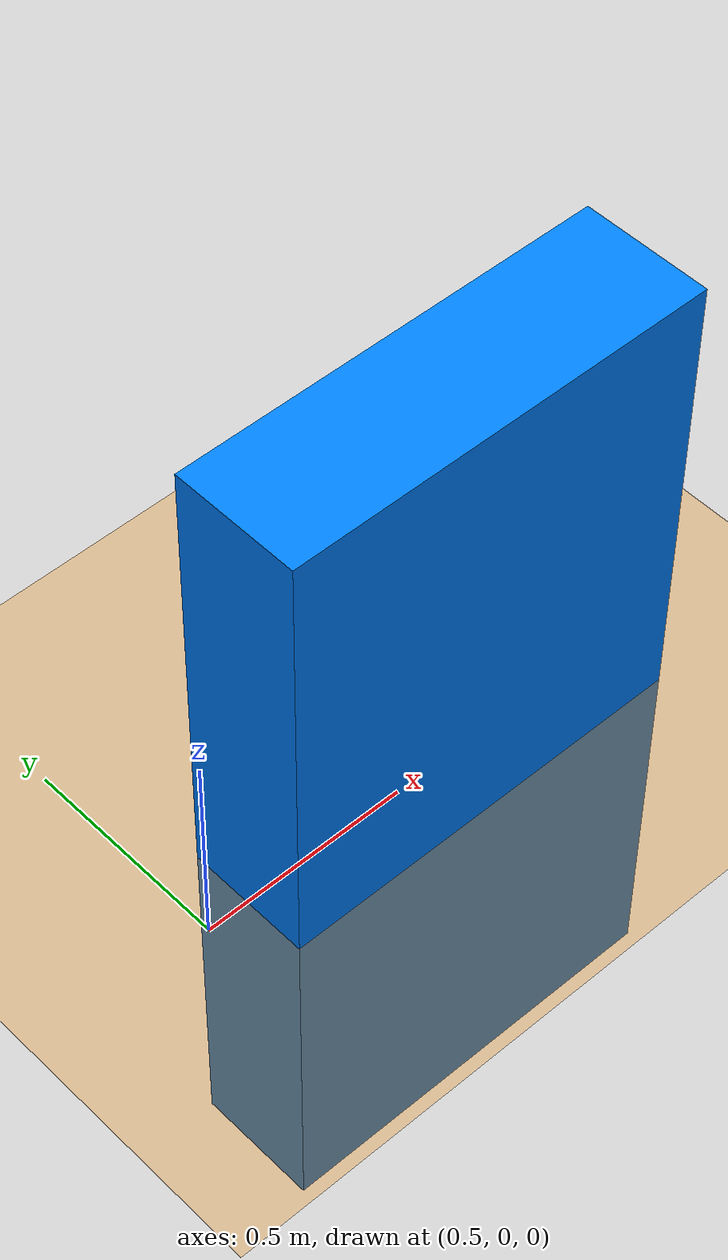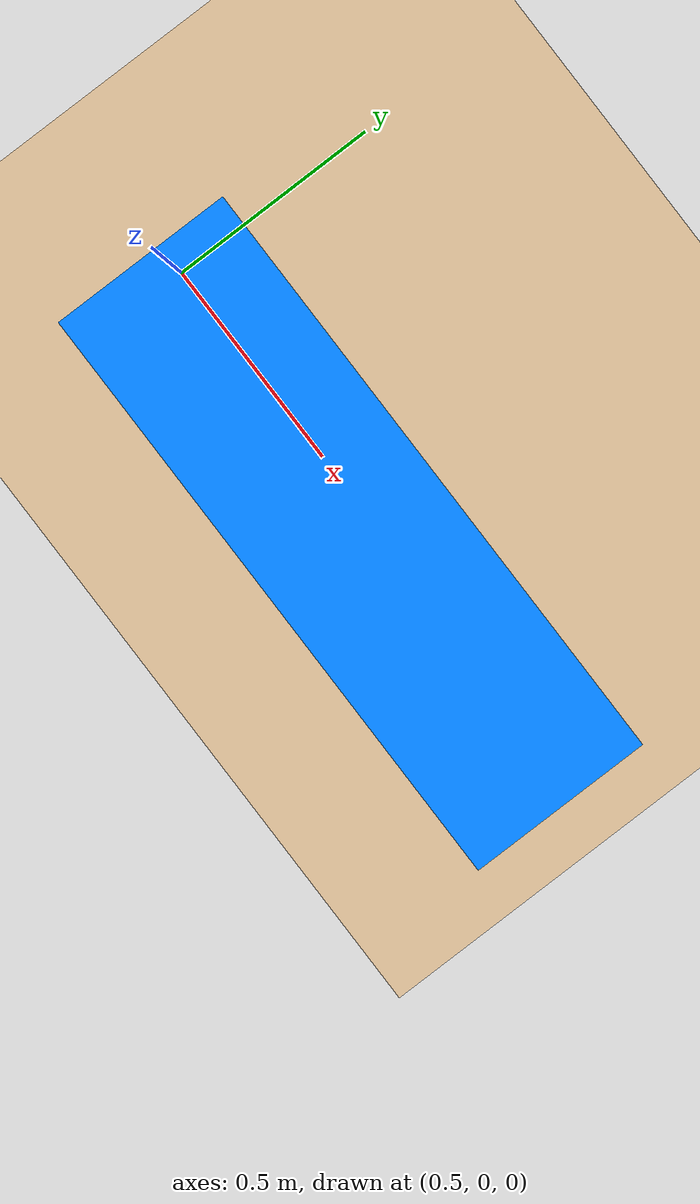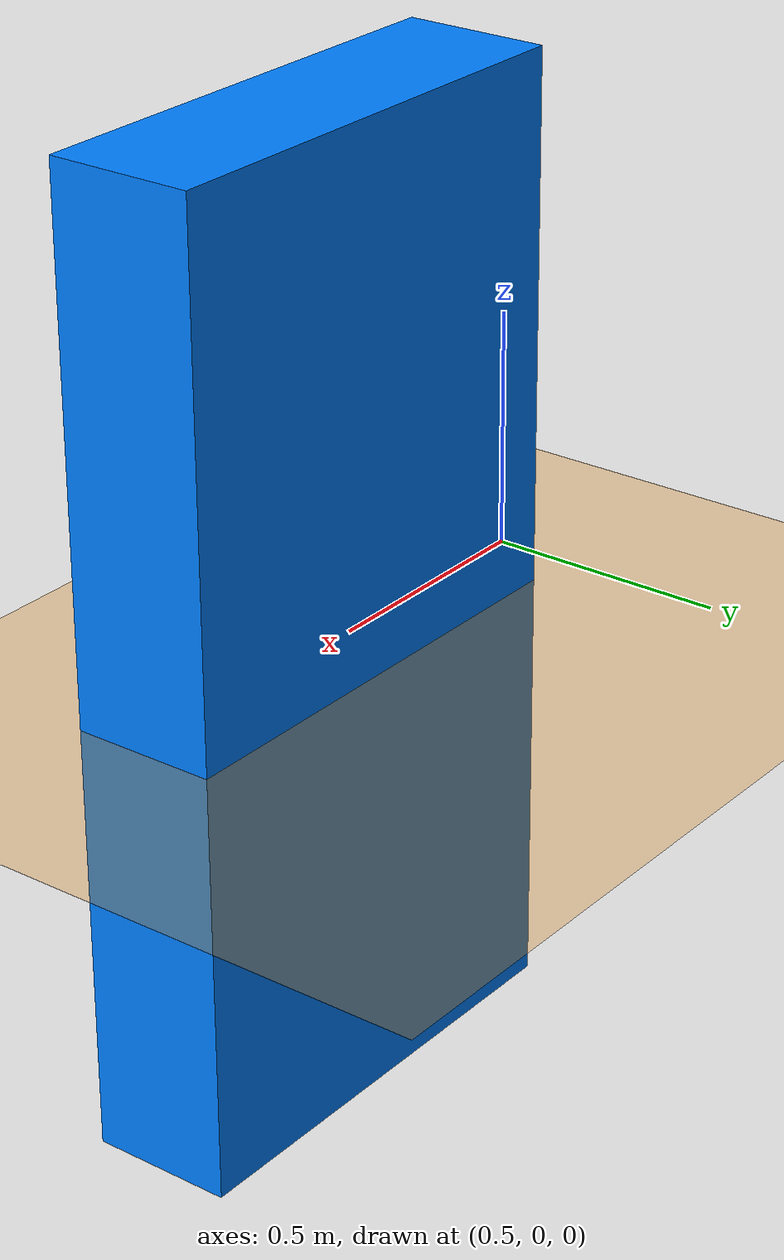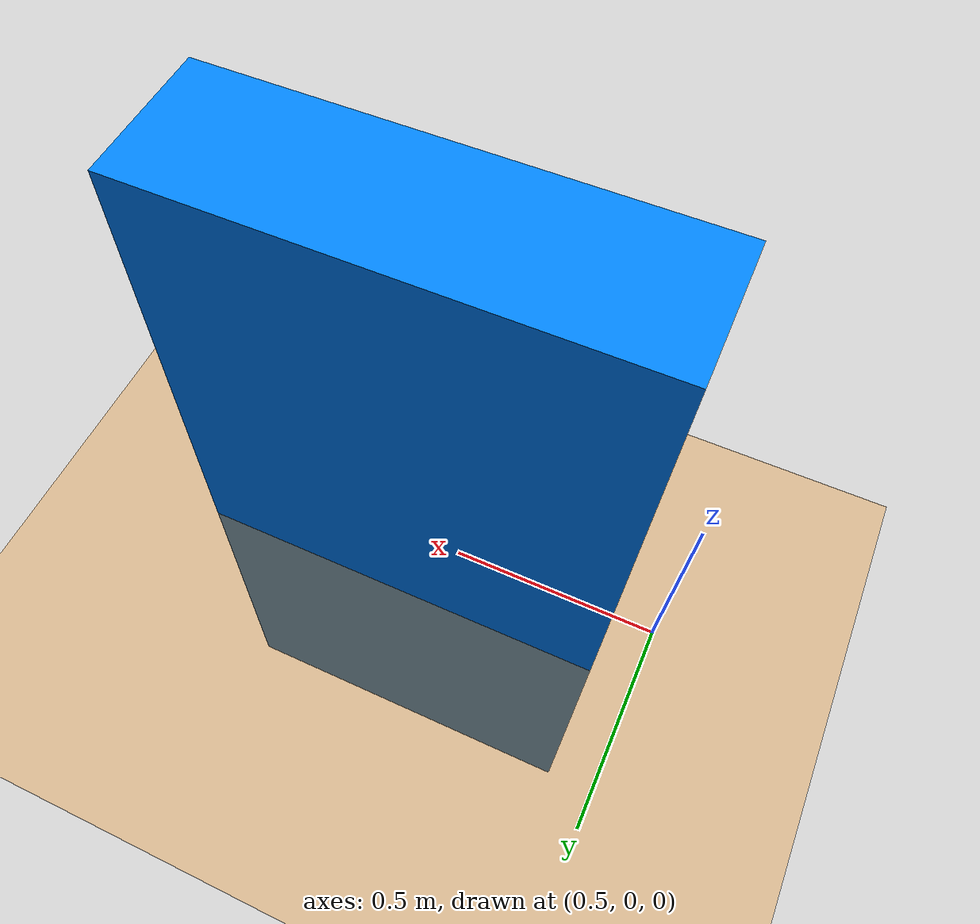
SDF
<?xml version="1.0"?>
<sdf version="1.6">
  <world name="stairs">

    <plugin
      filename="gz-sim-physics-system"
      name="gz::sim::systems::Physics">
    </plugin>
    <plugin
      filename="gz-sim-user-commands-system"
      name="gz::sim::systems::UserCommands">
    </plugin>
    <plugin
      filename="gz-sim-scene-broadcaster-system"
      name="gz::sim::systems::SceneBroadcaster">
    </plugin>
    <plugin
      filename="gz-sim-contact-system"
      name="gz::sim::systems::Contact">
    </plugin>
    <plugin
      filename="gz-sim-sensors-system"
      name="gz::sim::systems::Sensors">
      <render_engine>ogre2</render_engine>
    </plugin>
    <plugin
      filename="gz-sim-imu-system"
      name="gz::sim::systems::Imu">
    </plugin>

    <physics name="1ms" type="ignored">
      <max_step_size>0.001</max_step_size>
      <real_time_factor>1.0</real_time_factor>
    </physics>

    <scene>
      <ambient>0.4 0.4 0.4 1.0</ambient>
      <background>0.7 0.7 0.7 1.0</background>
      <shadows>true</shadows>
    </scene>

    <physics name="physics" type="ode">
      <max_step_size>0.001</max_step_size>
      <real_time_factor>1.0</real_time_factor>
      <real_time_update_rate>1000</real_time_update_rate>
    </physics>

    <gravity>0 0 -9.8</gravity>

    <wind/>

    <!-- Sun light -->
    <light name="sun" type="directional">
      <cast_shadows>true</cast_shadows>
      <pose>0 0 10 0 0 0</pose>
      <diffuse>1 1 1 1</diffuse>
      <specular>0.2 0.2 0.2 1</specular>
      <attenuation>
        <range>1000</range>
        <constant>0.9</constant>
        <linear>0.01</linear>
        <quadratic>0.001</quadratic>
      </attenuation>
      <direction>-0.5 0.5 -1</direction>
    </light>

    <!-- Ground plane -->
    <model name="ground_plane">
      <static>true</static>
      <link name="link">
        <collision name="collision">
          <geometry>
            <plane>
              <normal>0 0 1</normal>
              <size>100 100</size>
            </plane>
          </geometry>
        </collision>

        <visual name="visual">
          <geometry>
            <plane>
              <normal>0 0 1</normal>
              <size>100 100</size>
            </plane>
          </geometry>
          <material>
            <ambient>0.9 0.5 0.0 1</ambient>
            <diffuse>0.9 0.5 0.0 1</diffuse>
          </material>
        </visual>
      </link>
    </model>

    <!--       3 GRADINI       -->

    <!-- Parametri -->
    <!-- step height = 0.06 -->
    <!-- step depth  = 0.20 -->
    <!-- step width  = 1.00 -->

    <!-- Step 2 -->
    <model name="step_2">
      <static>true</static>
      <pose>1.1 0 0.09 0 0 0</pose> <!-- spostato di 20 cm lungo X -->
      <link name="link">
        <collision name="collision">
          <geometry>
            <box>
              <size>1.0 2.0 0.05</size>
            </box>
          </geometry>
        </collision>
        <visual name="visual">
          <geometry>
            <box>
              <size>1.0 0.3 2.0</size>
            </box>
          </geometry>
          <material>
            <ambient>0.0 0.5 1.0 1</ambient>
            <diffuse>0.0 0.5 1.0 1</diffuse>
          </material>
        </visual>
      </link>
    </model>

    <!-- GUI -->
    <gui fullscreen="0">
      <camera name="default">
        <pose>3 3 2 0 -0.4 2.2</pose>
      </camera>
    </gui>

  </world>
</sdf>
